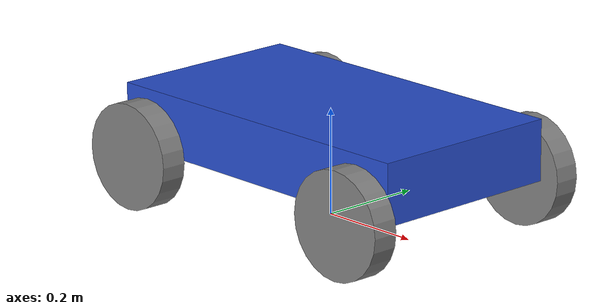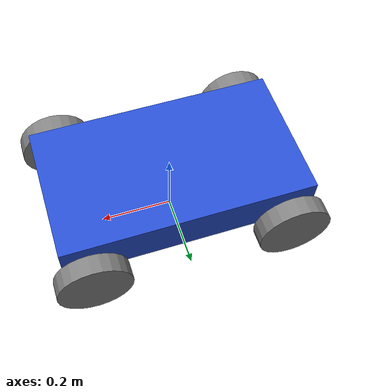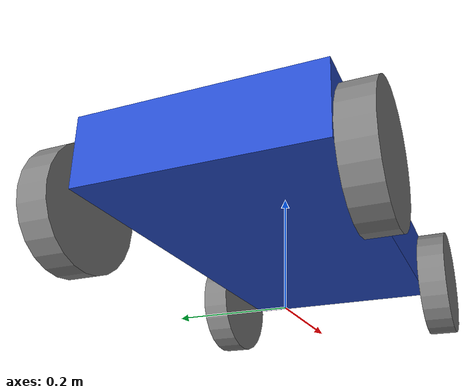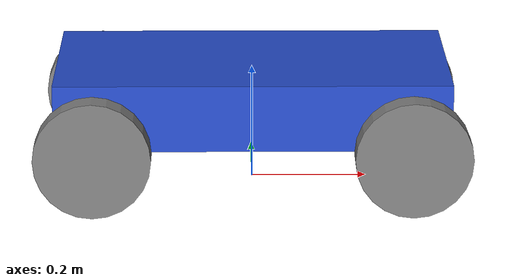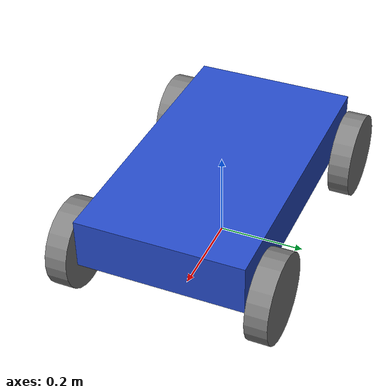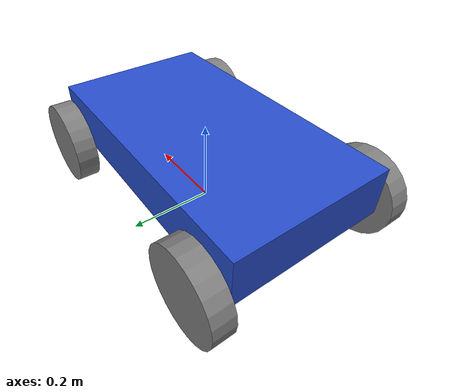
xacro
<?xml version="1.0"?>
<robot xmlns:xacro="http://www.ros.org/wiki/xacro">

    <xacro:property name="base_lenght" value="0.68"/>
    <xacro:property name="base_width" value="0.38"/>
    <xacro:property name="base_height" value="0.115"/>
    <xacro:property name="wheel_radius" value="0.1"/>
    <xacro:property name="wheel_length" value="0.05"/>

    <link name="base_footprint"/>

    <link name="base_link">
        <visual>
            <geometry>
                <box size="${base_lenght} ${base_width} ${base_height}" />
            </geometry>
            <origin xyz="0 0 ${base_height/2.0}" rpy="0 0 0" />
            <material name="blue" />
        </visual>
        <collision>
            <geometry>
                <!-- Narrower collision box to avoid any physical contact with the wheels -->
                <box size="${base_lenght*0.9} ${base_width*0.8} ${base_height*0.8}" />
            </geometry>
            <origin xyz="0 0 ${base_height/2.0}" rpy="0 0 0" />
       </collision>
        <xacro:box_inertia m="50.0" x="${base_lenght}" y="${base_width}" z="${base_height}"
                           o_xyz="0 0 ${base_height/2.0}" o_rpy="0 0 0" />
    </link>

    <xacro:include filename="mecanum_wheel.urdf.xacro"/>

    <joint name="base_joint" type="fixed">
        <parent link="base_footprint"/>
        <child link="base_link"/>
        <origin xyz="0 0 ${wheel_radius}" rpy="0 0 0"/>
    </joint>

    <!-- Mecanum Wheels with original cylinder visual, but mecanum collision & inertia -->
    <xacro:mecanum_wheel
        side="left_front"
        radius="${wheel_radius}"
        width="${wheel_length}"
        pos_x="${base_lenght / 2.5}"
        pos_y="${(base_width+wheel_length)/2.0 + 0.01}"
        pos_z="0"
        mass="3.0"
    />

    <xacro:mecanum_wheel
        side="right_front"
        radius="${wheel_radius}"
        width="${wheel_length}"
        pos_x="${base_lenght / 2.5}"
        pos_y="${-(base_width+wheel_length)/2.0 - 0.01}"
        pos_z="0"
        mass="3.0"
    />

    <xacro:mecanum_wheel
        side="left_back"
        radius="${wheel_radius}"
        width="${wheel_length}"
        pos_x="${-base_lenght / 2.5}"
        pos_y="${(base_width+wheel_length)/2.0 + 0.01}"
        pos_z="0"
        mass="3.0"
    />

    <xacro:mecanum_wheel
        side="right_back"
        radius="${wheel_radius}"
        width="${wheel_length}"
        pos_x="${-base_lenght / 2.5}"
        pos_y="${-(base_width+wheel_length)/2.0 - 0.01}"
        pos_z="0"
        mass="3.0"
    />

</robot>

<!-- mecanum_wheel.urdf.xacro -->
<robot xmlns:xacro="http://ros.org/wiki/xacro" xmlns:gz="http://gazebosim.org/schema">

  <xacro:macro name="mecanum_wheel" params="side radius width pos_x pos_y pos_z mass mesh_file:='' joint_name:='' link_name:=''">

    <xacro:property name="_link_name" value="${link_name if link_name != '' else side + '_wheel_link'}"/>
    <xacro:property name="_joint_name" value="${joint_name if joint_name != '' else 'base_' + side + '_wheel_joint'}"/>

    <link name="${_link_name}">
      <visual>
        <origin xyz="0 0 0" rpy="${pi/2} 0 0"/>
        <geometry>
          <cylinder radius="${radius}" length="${width}"/>
        </geometry>
        <material name="grey">
          <color rgba="0.5 0.5 0.5 1.0"/>
        </material>
      </visual>

      <collision>
        <origin xyz="0 0 0" rpy="${pi/2} 0 0"/>
        <geometry>
          <cylinder radius="${radius}" length="${width}"/>
        </geometry>
      </collision>

      <inertial>
        <origin xyz="0 0 0" rpy="0 0 0"/>
        <mass value="${mass}"/>
        <inertia ixx="${(1.0/12.0) * mass * (3.0*radius*radius + width*width)}" ixy="0" ixz="0"
                 iyy="${(1.0/2.0) * mass * (radius * radius)}" iyz="0"
                 izz="${(1.0/12.0) * mass * (3.0*radius*radius + width*width)}" />
      </inertial>
    </link>

    <gazebo reference="${_link_name}">
      <collision>
        <surface>
          <friction>
            <ode>
              <mu>1.2</mu>
              <mu2>0.15</mu2>
              <xacro:if value="${side == 'front_left' or side == 'left_front'}">
                <fdir1 gz:expressed_in="base_footprint">1 -1 0</fdir1>
              </xacro:if>
              <xacro:if value="${side == 'rear_left' or side == 'left_back'}">
                <fdir1 gz:expressed_in="base_footprint">1 1 0</fdir1>
              </xacro:if>
              <xacro:if value="${side == 'front_right' or side == 'right_front'}">
                <fdir1 gz:expressed_in="base_footprint">1 1 0</fdir1>
              </xacro:if>
              <xacro:if value="${side == 'rear_right' or side == 'right_back'}">
                <fdir1 gz:expressed_in="base_footprint">1 -1 0</fdir1>
              </xacro:if>
            </ode>
          </friction>
          <contact>
            <ode>
              <kp>10000000.0</kp>
              <kd>100.0</kd>
              <min_depth>0.001</min_depth>
              <max_vel>0.01</max_vel>
            </ode>
          </contact>
        </surface>
      </collision>
    </gazebo>

    <gazebo reference="${_link_name}">
      <visual>
        <material>
          <ambient>0.3 0.3 0.3 1.0</ambient>
          <diffuse>0.5 0.5 0.5 1.0</diffuse>
          <specular>0.2 0.2 0.2 1.0</specular>
          <emissive>0.0 0.0 0.0 0.0</emissive>
        </material>
      </visual>
    </gazebo>

    <joint name="${_joint_name}" type="continuous">
      <axis xyz="0 1 0" />
      <parent link="base_link"/>
      <child link="${_link_name}"/>
      <origin xyz="${pos_x} ${pos_y} ${pos_z}" rpy="0 0 0"/>
      <limit effort="10000" velocity="30"/>
      <dynamics damping="0.1" friction="0.1"/>
      <gazebo>
        <provideFeedback>true</provideFeedback>
      </gazebo>
    </joint>

  </xacro:macro>

</robot>
